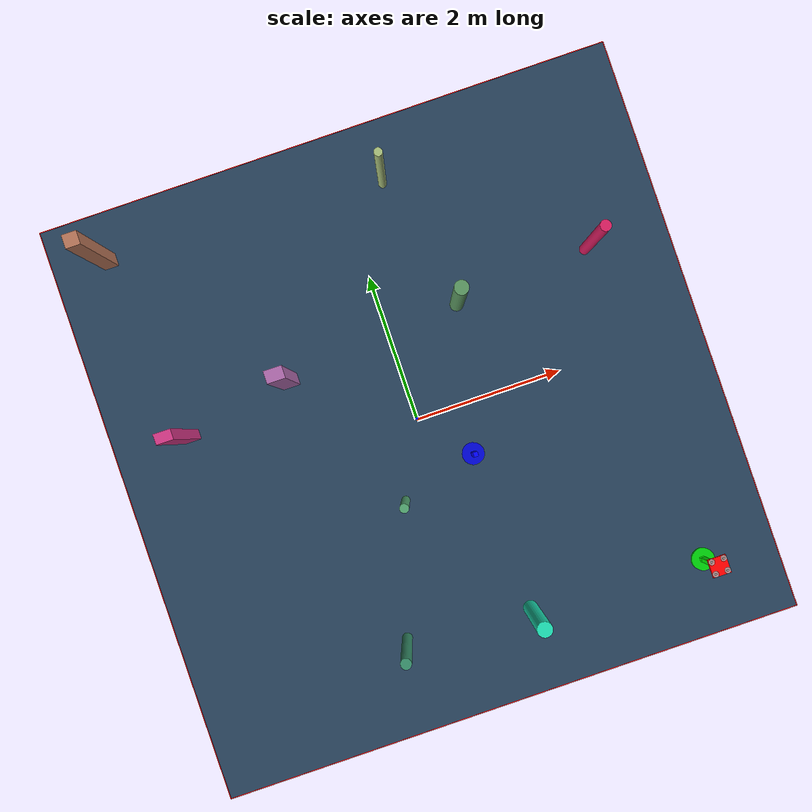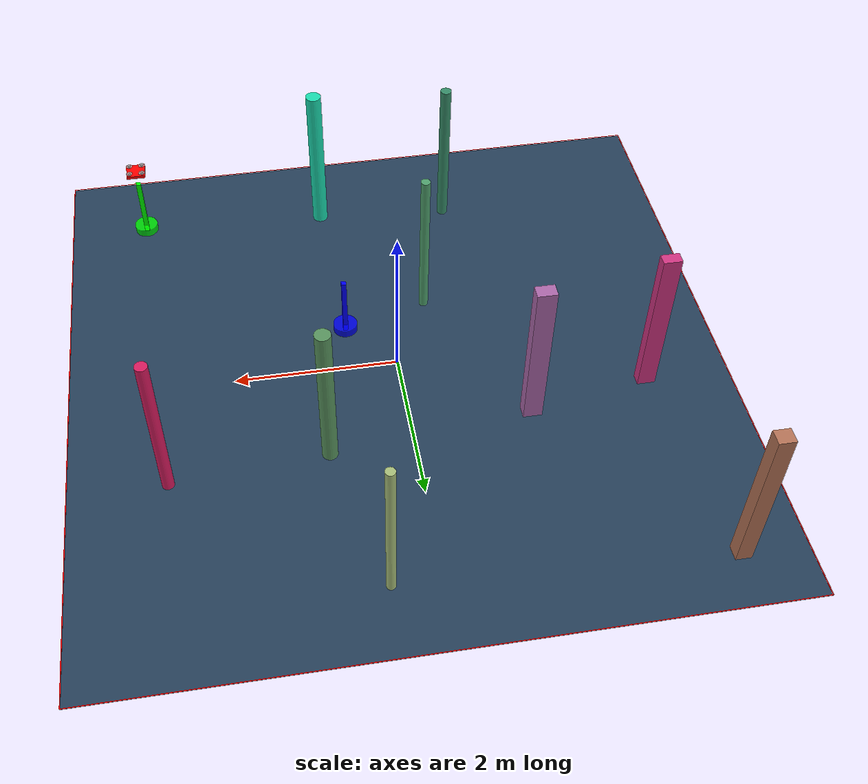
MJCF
<?xml version='1.0' encoding='utf-8'?>
<mujoco model="complex_uav_env">
  <compiler angle="degree" coordinate="local" inertiafromgeom="true" />
  <option integrator="RK4" timestep="0.01" />

  <visual>
    <headlight diffuse="0.6 0.6 0.6" ambient="0.3 0.3 0.3" />
    <rgba haze="0.15 0.25 0.35 1" />
    <global offwidth="2560" offheight="1440" />
  </visual>

  <asset>
    <texture type="skybox" builtin="gradient" rgb1="0.3 0.5 0.7" rgb2="0 0 0" width="512" height="3072" />
    <texture name="grid" type="2d" builtin="checker" rgb1="0.1 0.2 0.3" rgb2="0.2 0.3 0.4" width="512" height="512" />
    <material name="grid" texture="grid" texrepeat="1 1" />
  </asset>

  <worldbody>

    <geom name="ground" type="plane" size="4.0 4.0 0.1" material="grid" />
    <light name="light1" pos="0 0 4" dir="0 0 -1" diffuse="1 1 1" />

    <geom name="start_marker" type="cylinder" size="0.15 0.05" pos="3.0 -3.0 0.05" rgba="0 1 0 0.8" />
    <geom name="start_pole" type="box" size="0.03 0.03 0.4" pos="3.0 -3.0 0.4" rgba="0 1 0 1" />

    <geom name="goal_marker" type="cylinder" size="0.15 0.05" pos="0.5544326608410226 -0.6771678530687031 0.05" rgba="0 0 1 0.8" />
    <geom name="goal_pole" type="box" size="0.03 0.03 0.4" pos="0.5544326608410226 -0.6771678530687031 0.4" rgba="0 0 1 1" />

    <body name="chassis" pos="3.0 -3.0 1.0">
      <joint type="free" name="root" />
      <geom type="box" size="0.12 0.12 0.02" rgba="1.0 0.0 0.0 1.0" mass="0.8" />

      <geom type="box" size="0.08 0.01 0.005" pos="0 0 0.01" rgba="0.3 0.3 0.3 1" />
      <geom type="box" size="0.01 0.08 0.005" pos="0 0 0.01" rgba="0.3 0.3 0.3 1" />

      <geom type="cylinder" size="0.015 0.02" pos="0.08 0.08 0.015" rgba="0.2 0.2 0.2 1" />
      <geom type="cylinder" size="0.015 0.02" pos="-0.08 0.08 0.015" rgba="0.2 0.2 0.2 1" />
      <geom type="cylinder" size="0.015 0.02" pos="0.08 -0.08 0.015" rgba="0.2 0.2 0.2 1" />
      <geom type="cylinder" size="0.015 0.02" pos="-0.08 -0.08 0.015" rgba="0.2 0.2 0.2 1" />

      <geom type="cylinder" size="0.04 0.002" pos="0.08 0.08 0.035" rgba="0.7 0.7 0.7 0.8" />
      <geom type="cylinder" size="0.04 0.002" pos="-0.08 0.08 0.035" rgba="0.7 0.7 0.7 0.8" />
      <geom type="cylinder" size="0.04 0.002" pos="0.08 -0.08 0.035" rgba="0.7 0.7 0.7 0.8" />
      <geom type="cylinder" size="0.04 0.002" pos="-0.08 -0.08 0.035" rgba="0.7 0.7 0.7 0.8" />

      <site name="motor1" pos="0.08 0.08 0" size="0.01" />
      <site name="motor2" pos="-0.08 0.08 0" size="0.01" />
      <site name="motor3" pos="0.08 -0.08 0" size="0.01" />
      <site name="motor4" pos="-0.08 -0.08 0" size="0.01" />
    </body>
    <geom name="test_obs_0" type="box" size="0.10986174995818265 0.06770348017401315 1.0" pos="-2.938257070839072 0.7543937044321258 1.0" rgba="0.8241017862498525 0.20845097392635817 0.5165498278074989 1.0" />
    <geom name="test_obs_1" type="box" size="0.09472155716348103 0.08624570165270898 1.0" pos="-3.2243962749807 3.3333520448308454 1.0" rgba="0.7171505981916005 0.45604730923175363 0.3440325547269031 1.0" />
    <geom name="test_obs_2" type="cylinder" size="0.07198214448657403 1.0" pos="2.8573686393389397 1.433518662894465 1.0" rgba="0.8588338609962534 0.10975752983858503 0.3795910271816494 1.0" />
    <geom name="test_obs_3" type="cylinder" size="0.05439768367642134 1.0" pos="0.5750902974000051 3.141221536145279 1.0" rgba="0.6590251171345141 0.7484143627178609 0.4785311945853302 1.0" />
    <geom name="test_obs_4" type="cylinder" size="0.06987681415220905 1.0" pos="-1.075882682220225 -2.726844930312746 1.0" rgba="0.21012700836792586 0.5535822441206175 0.4098958202184113 1.0" />
    <geom name="test_obs_5" type="cylinder" size="0.05767826157702419 1.0" pos="-0.5006335884444991 -0.9765431508494775 1.0" rgba="0.3123076232154697 0.6354693628172993 0.43081176615083916 1.0" />
    <geom name="test_obs_6" type="cylinder" size="0.09767945537873417 1.0" pos="0.6150748887424826 -2.8753771255768146 1.0" rgba="0.10562851829742047 0.8670705694850723 0.694902537858316 1.0" />
    <geom name="test_obs_7" type="box" size="0.115543418435486 0.08051563455736052 1.0" pos="-1.4517778160393586 1.0286504754423693 1.0" rgba="0.6800379783500616 0.40793500684328665 0.670877214266808 1.0" />
    <geom name="test_obs_8" type="cylinder" size="0.09302698032247309 1.0" pos="0.9936606511764042 1.2891940757557752 1.0" rgba="0.3506077335058069 0.5853062445154714 0.3743869420543119 1.0" />
  <geom name="boundary_north" type="box" size="4.0 0.005 0.002" pos="0 4.0 0.002" rgba="1.0 0.0 0.0 1.0" /><geom name="boundary_south" type="box" size="4.0 0.005 0.002" pos="0 -4.0 0.002" rgba="1.0 0.0 0.0 1.0" /><geom name="boundary_east" type="box" size="0.005 4.0 0.002" pos="4.0 0 0.002" rgba="1.0 0.0 0.0 1.0" /><geom name="boundary_west" type="box" size="0.005 4.0 0.002" pos="-4.0 0 0.002" rgba="1.0 0.0 0.0 1.0" /></worldbody>

  <actuator>
    <motor name="m1" gear="0 0 1 0 0 0" site="motor1" />
    <motor name="m2" gear="0 0 1 0 0 0" site="motor2" />
    <motor name="m3" gear="0 0 1 0 0 0" site="motor3" />
    <motor name="m4" gear="0 0 1 0 0 0" site="motor4" />
  </actuator>
</mujoco>
